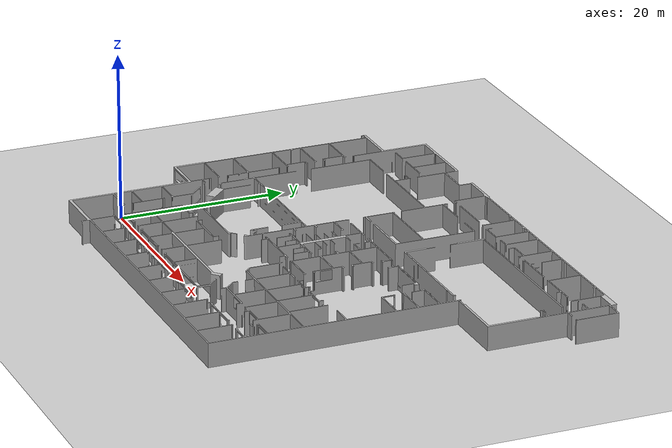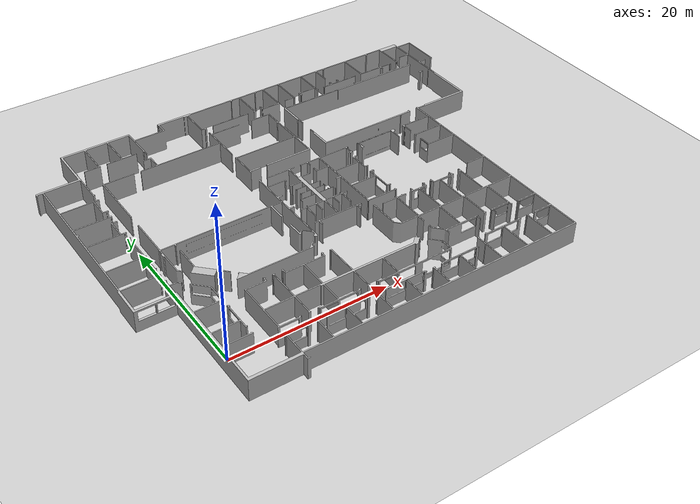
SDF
<?xml version="1.0"?>
<sdf version="1.6">
  <world name="default">

    <include>
      <uri>model://ground_plane</uri>
    </include>

    <include>
      <uri>model://sun</uri>
    </include>

    <scene>
      <shadows>false</shadows>
    </scene>

    <gui fullscreen='0'>
      <camera name='user_camera'>
        <pose frame=''>0.319654 -0.235002 9.29441 0 1.5138 0.009599</pose>
        <view_controller>orbit</view_controller>
        <projection_type>perspective</projection_type>
      </camera>
    </gui>

    <physics type="ode">
      <real_time_update_rate>1000.0</real_time_update_rate>
      <max_step_size>0.001</max_step_size>
      <real_time_factor>1</real_time_factor>
      <ode>
        <solver>
          <type>quick</type>
          <iters>150</iters>
          <precon_iters>0</precon_iters>
          <sor>1.400000</sor>
          <use_dynamic_moi_rescaling>1</use_dynamic_moi_rescaling>
        </solver>
        <constraints>
          <cfm>0.00001</cfm>
          <erp>0.2</erp>
          <contact_max_correcting_vel>2000.000000</contact_max_correcting_vel>
          <contact_surface_layer>0.01000</contact_surface_layer>
        </constraints>
      </ode>
    </physics>

    <model name="willow_mini">
      <static>1</static>
      <include>
        <uri>model://willow_mini</uri>
      </include>
    </model>

  </world>
</sdf>

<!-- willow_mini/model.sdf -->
<sdf version="1.5">
  <model name="willow_mini">
    <static>true</static>
    <pose>-1 -6 0 0 0 0</pose>
    <link name="walls">
      <collision name="collision">
        <geometry>
          <mesh>
            <uri>model://willow_mini/meshes/willow_mini.stl</uri>
          </mesh>
        </geometry>
      </collision>
      <visual name="visual">
        <geometry>
          <mesh>
            <uri>model://willow_mini/meshes/willow_mini.dae</uri>
          </mesh>
        </geometry>
        <cast_shadows>false</cast_shadows>
      </visual>
    </link>
  </model>
</sdf>
